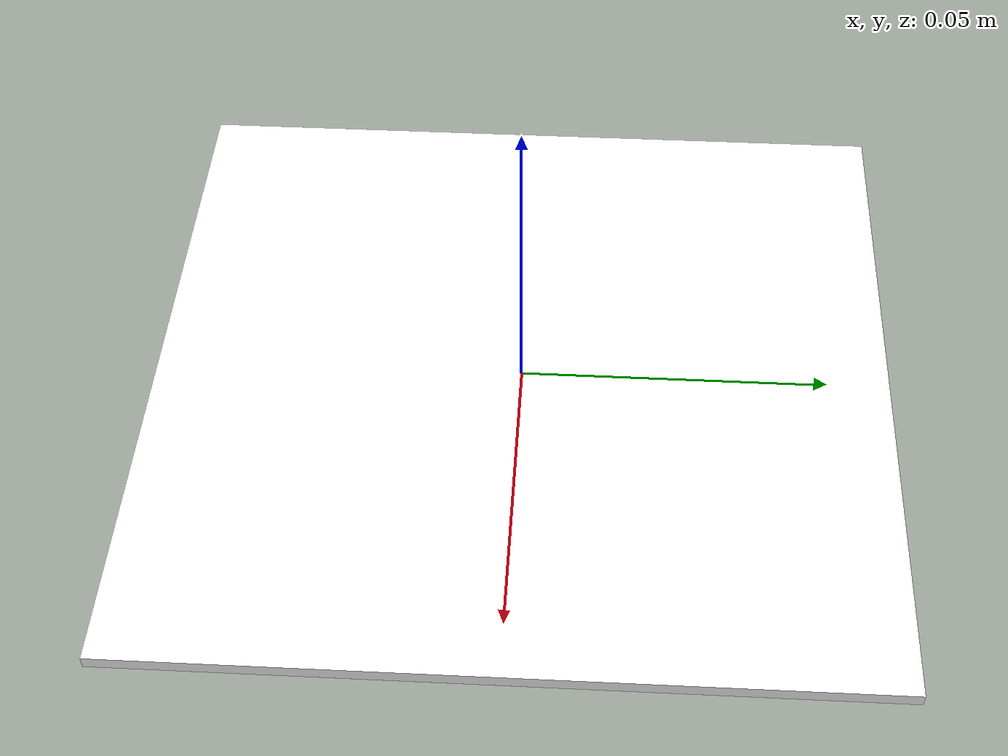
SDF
<?xml version="1.0"?>
<sdf version="1.9">
  <model name="aruco_calibration_marker">
    <static>true</static>
    <link name="marker_link">
      <visual name="marker_visual">
        <geometry>
          <box>
            <size>0.12 0.12 0.002</size>
          </box>
        </geometry>
        <material>
          <ambient>1 1 1 1</ambient>
          <diffuse>1 1 1 1</diffuse>
          <specular>0.1 0.1 0.1 1</specular>
          <pbr>
            <metal>
              <albedo_map>materials/textures/marker_0.png</albedo_map>
              <roughness>0.8</roughness>
              <metalness>0.0</metalness>
            </metal>
          </pbr>
        </material>
      </visual>
      <collision name="marker_collision">
        <geometry>
          <box>
            <size>0.12 0.12 0.002</size>
          </box>
        </geometry>
      </collision>
    </link>
  </model>
</sdf>
